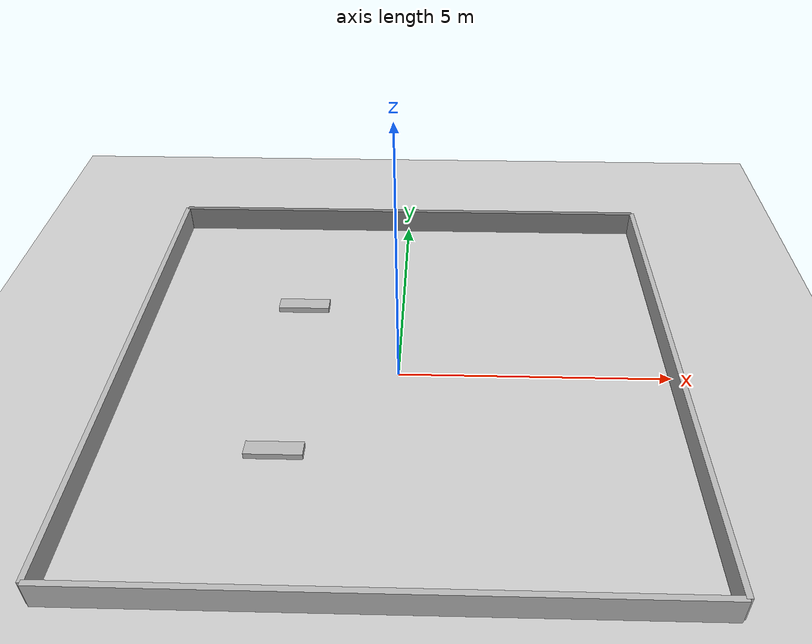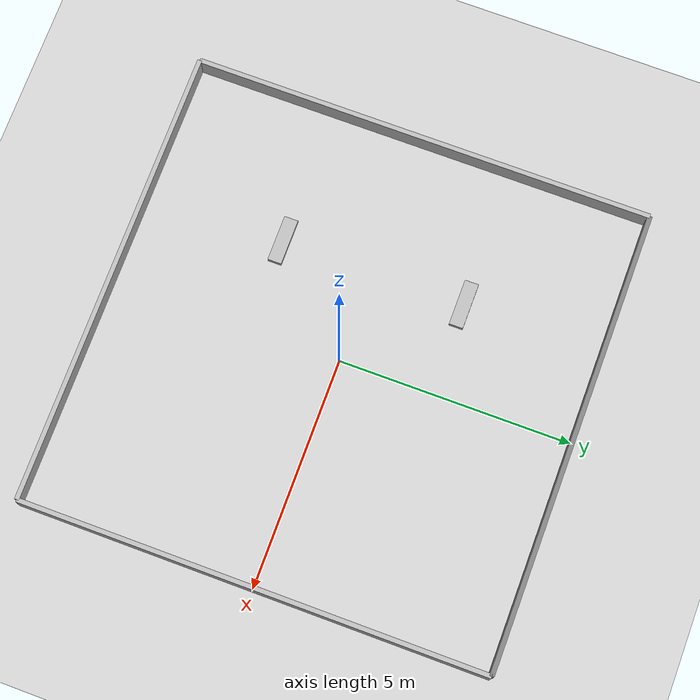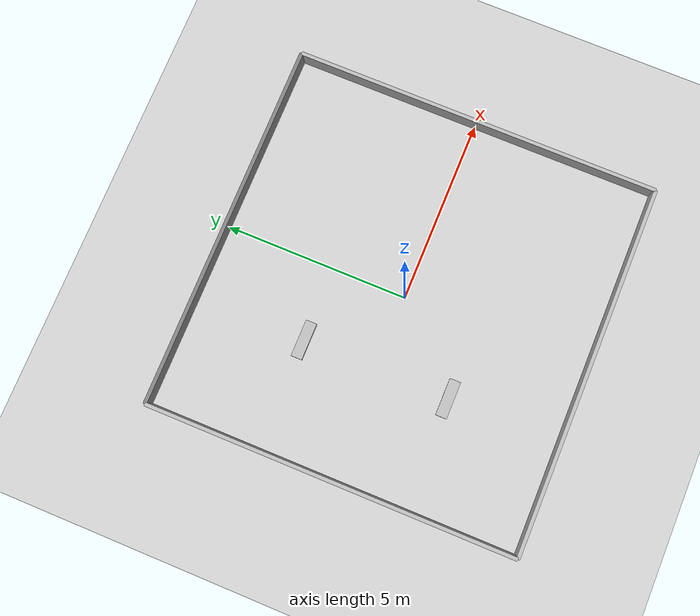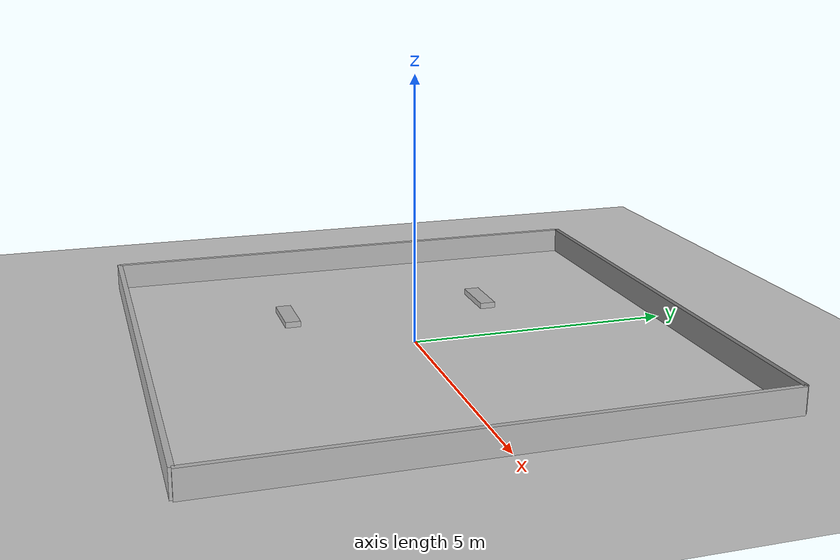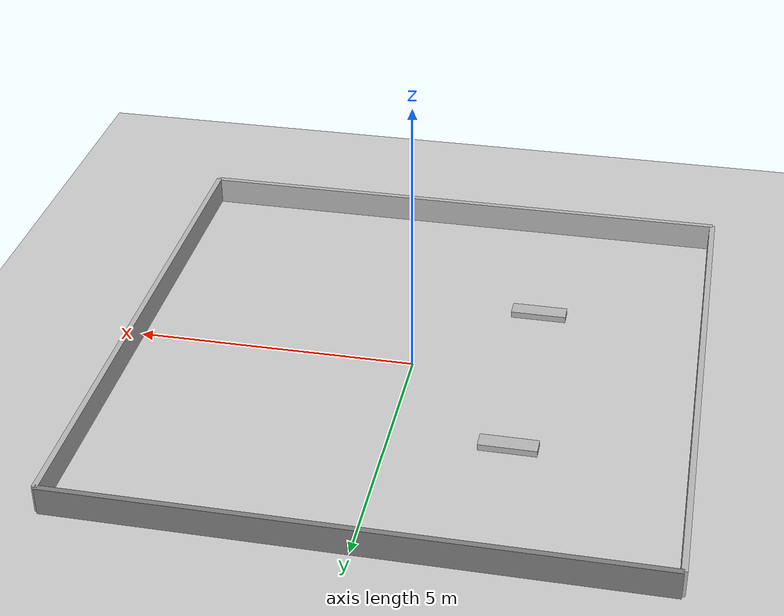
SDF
<sdf version="1.6">
 <world name="default">
  <include><uri>model://ground_plane</uri></include>
  <model name="arena_walls">
   <static>true</static>
   <link name="walls">
    <collision name="north">
     <geometry><box><size>10 0.1 0.5</size></box></geometry>
     <pose>0 5 0.25 0 0 0</pose>
    </collision>
    <visual name="north_vis">
     <geometry><box><size>10 0.1 0.5</size></box></geometry>
     <material><ambient>0.5 0.5 0.5 1</ambient></material>
     <pose>0 5 0.25 0 0 0</pose>
    </visual>
    <collision name="south">
     <geometry><box><size>10 0.1 0.5</size></box></geometry>
     <pose>0 -5 0.25 0 0 0</pose>
    </collision>
    <visual name="south_vis">
     <geometry><box><size>10 0.1 0.5</size></box></geometry>
     <pose>0 -5 0.25 0 0 0</pose>
    </visual>
    <collision name="east">
     <geometry><box><size>0.1 10 0.5</size></box></geometry>
     <pose>5 0 0.25 0 0 0</pose>
    </collision>
    <visual name="east_vis">
     <geometry><box><size>0.1 10 0.5</size></box></geometry>
     <pose>5 0 0.25 0 0 0</pose>
    </visual>
    <collision name="west">
     <geometry><box><size>0.1 10 0.5</size></box></geometry>
     <pose>-5 0 0.25 0 0 0</pose>
    </collision>
    <visual name="west_vis">
     <geometry><box><size>0.1 10 0.5</size></box></geometry>
     <pose>-5 0 0.25 0 0 0</pose>
    </visual>
   </link>
  </model>
  <include><uri>model://wooden_crate</uri><pose>-2 -2 0 0 0 0</pose></include>
  <include><uri>model://wooden_crate</uri><pose>-2 2 0 0 0 0</pose></include>
  <include><uri>model://sun</uri></include>
 </world>
</sdf>

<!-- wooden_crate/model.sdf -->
<sdf version="1.4">
  <model name="wooden_crate">
    <pose>0.5 0.5 0.5 0 0 0</pose>
    <static>true</static>
    <link name="link">
      <collision name="collision">
        <geometry>
          <box>
            <size>1.0 0.3 0.2</size>
          </box>
        </geometry>
      </collision>
      <visual name="visual">
        <geometry>
          <box>
            <size>1.0 0.3 0.2</size>
          </box>
        </geometry>
      </visual>
    </link>
  </model>
</sdf>
